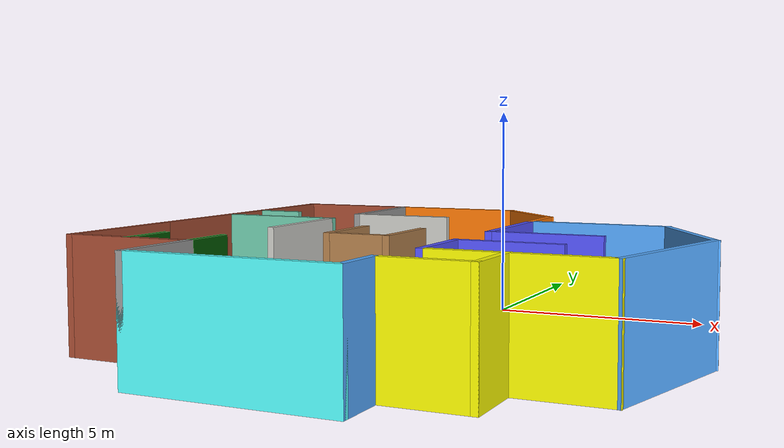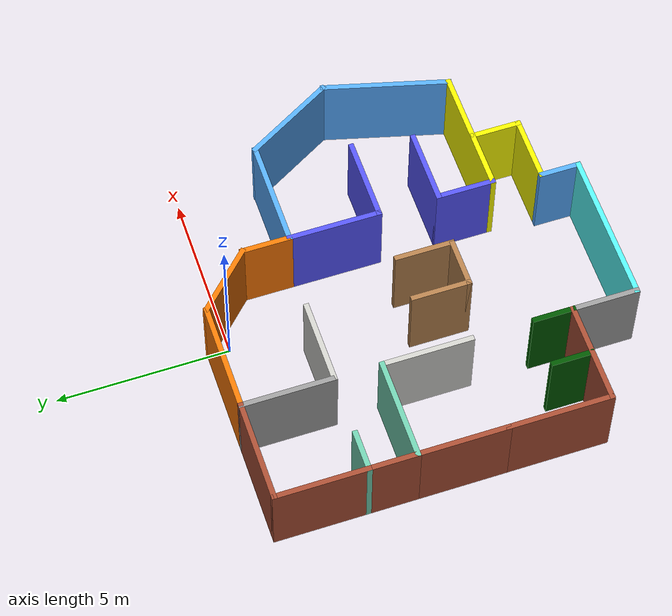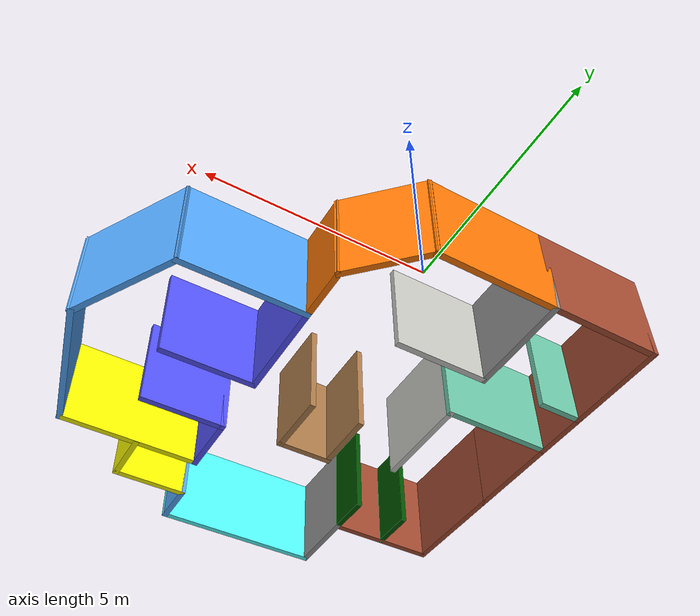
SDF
<?xml version='1.0'?>
<sdf version='1.6'>
  <model name='building4'>
    <pose frame=''>0.073423 -5.03449 0 0 -0 0</pose>
    <link name='Wall_12'>
      <collision name='Wall_12_Collision'>
        <geometry>
          <box>
            <size>2.75 0.15 2.5</size>
          </box>
        </geometry>
        <pose frame=''>0 0 1.25 0 -0 0</pose>
      </collision>
      <visual name='Wall_12_Visual'>
        <pose frame=''>0 0 1.25 0 -0 0</pose>
        <geometry>
          <box>
            <size>2.75 0.15 2.5</size>
          </box>
        </geometry>
        <material>
          <script>
            <uri>file://media/materials/scripts/gazebo.material</uri>
            <name>Gazebo/Bricks</name>
          </script>
          <ambient>1 1 1 1</ambient>
        </material>
      </visual>
      <pose frame=''>-5.99369 4.30947 0 0 -0 1.5708</pose>
    </link>
    <link name='Wall_13'>
      <collision name='Wall_13_Collision'>
        <geometry>
          <box>
            <size>3 0.15 2.5</size>
          </box>
        </geometry>
        <pose frame=''>0 0 1.25 0 -0 0</pose>
      </collision>
      <visual name='Wall_13_Visual'>
        <pose frame=''>0 0 1.25 0 -0 0</pose>
        <geometry>
          <box>
            <size>3 0.15 2.5</size>
          </box>
        </geometry>
        <material>
          <script>
            <uri>file://media/materials/scripts/gazebo.material</uri>
            <name>Gazebo/Bricks</name>
          </script>
          <ambient>1 1 1 1</ambient>
        </material>
      </visual>
      <pose frame=''>-4.56869 5.60947 0 0 -0 0</pose>
    </link>
    <link name='Wall_14'>
      <collision name='Wall_14_Collision'>
        <geometry>
          <box>
            <size>2.75 0.15 2.5</size>
          </box>
        </geometry>
        <pose frame=''>0 0 1.25 0 -0 0</pose>
      </collision>
      <visual name='Wall_14_Visual'>
        <pose frame=''>0 0 1.25 0 -0 0</pose>
        <geometry>
          <box>
            <size>2.75 0.15 2.5</size>
          </box>
        </geometry>
        <material>
          <script>
            <uri>file://media/materials/scripts/gazebo.material</uri>
            <name>Gazebo/Grey</name>
          </script>
          <ambient>1 1 1 1</ambient>
        </material>
      </visual>
      <pose frame=''>-3.14369 4.30947 0 0 0 -1.5708</pose>
    </link>
    <link name='Wall_16'>
      <collision name='Wall_16_Collision'>
        <geometry>
          <box>
            <size>2.5 0.15 2.5</size>
          </box>
        </geometry>
        <pose frame=''>0 0 1.25 0 -0 0</pose>
      </collision>
      <visual name='Wall_16_Visual'>
        <pose frame=''>0 0 1.25 0 -0 0</pose>
        <geometry>
          <box>
            <size>2.5 0.15 2.5</size>
          </box>
        </geometry>
        <material>
          <script>
            <uri>file://media/materials/scripts/gazebo.material</uri>
            <name>Gazebo/CeilingTiled</name>
          </script>
          <ambient>1 0 1 1</ambient>
        </material>
      </visual>
      <pose frame=''>-1.96869 3.00947 0 0 -0 0</pose>
    </link>
    <link name='Wall_18'>
      <collision name='Wall_18_Collision'>
        <geometry>
          <box>
            <size>3.25 0.15 2.5</size>
          </box>
        </geometry>
        <pose frame=''>0 0 1.25 0 -0 0</pose>
      </collision>
      <visual name='Wall_18_Visual'>
        <pose frame=''>0 0 1.25 0 -0 0</pose>
        <geometry>
          <box>
            <size>3.25 0.15 2.5</size>
          </box>
        </geometry>
        <material>
          <script>
            <uri>file://media/materials/scripts/gazebo.material</uri>
            <name>Gazebo/Grey</name>
          </script>
          <ambient>0.996078 0.47451 0.0196078 1</ambient>
        </material>
      </visual>
      <pose frame=''>-1.59369 5.60947 0 0 -0 0</pose>
    </link>
    <link name='Wall_19'>
      <collision name='Wall_19_Collision'>
        <geometry>
          <box>
            <size>2.25 0.15 2.5</size>
          </box>
        </geometry>
        <pose frame=''>0 0 1.25 0 -0 0</pose>
      </collision>
      <visual name='Wall_19_Visual'>
        <pose frame=''>0 0 1.25 0 -0 0</pose>
        <geometry>
          <box>
            <size>2.25 0.15 2.5</size>
          </box>
        </geometry>
        <material>
          <script>
            <uri>file://media/materials/scripts/gazebo.material</uri>
            <name>Gazebo/Grey</name>
          </script>
          <ambient>0.996078 0.47451 0.0196078 1</ambient>
        </material>
      </visual>
      <pose frame=''>0.698774 4.867 0 0 0 -0.785398</pose>
    </link>
    <link name='Wall_2'>
      <collision name='Wall_2_Collision'>
        <geometry>
          <box>
            <size>1.5 0.15 2.5</size>
          </box>
        </geometry>
        <pose frame=''>0 0 1.25 0 -0 0</pose>
      </collision>
      <visual name='Wall_2_Visual'>
        <pose frame=''>0 0 1.25 0 -0 0</pose>
        <geometry>
          <box>
            <size>1.5 0.15 2.5</size>
          </box>
        </geometry>
        <material>
          <script>
            <uri>file://media/materials/scripts/gazebo.material</uri>
            <name>Gazebo/Bricks</name>
          </script>
          <ambient>1 1 1 1</ambient>
        </material>
      </visual>
      <pose frame=''>-5.99369 2.33447 0 0 0 -1.5708</pose>
    </link>
    <link name='Wall_20'>
      <collision name='Wall_20_Collision'>
        <geometry>
          <box>
            <size>1.5 0.15 2.5</size>
          </box>
        </geometry>
        <pose frame=''>0 0 1.25 0 -0 0</pose>
      </collision>
      <visual name='Wall_20_Visual'>
        <pose frame=''>0 0 1.25 0 -0 0</pose>
        <geometry>
          <box>
            <size>1.5 0.15 2.5</size>
          </box>
        </geometry>
        <material>
          <script>
            <uri>file://media/materials/scripts/gazebo.material</uri>
            <name>Gazebo/Grey</name>
          </script>
          <ambient>0.996078 0.47451 0.0196078 1</ambient>
        </material>
      </visual>
      <pose frame=''>1.44124 3.44954 0 0 0 -1.5708</pose>
    </link>
    <link name='Wall_21'>
      <collision name='Wall_21_Collision'>
        <geometry>
          <box>
            <size>3.25 0.15 2.5</size>
          </box>
        </geometry>
        <pose frame=''>0 0 1.25 0 -0 0</pose>
      </collision>
      <visual name='Wall_21_Visual'>
        <pose frame=''>0 0 1.25 0 -0 0</pose>
        <geometry>
          <box>
            <size>3.25 0.15 2.5</size>
          </box>
        </geometry>
        <material>
          <script>
            <uri>file://media/materials/scripts/gazebo.material</uri>
            <name>Gazebo/Grey</name>
          </script>
          <ambient>0.333333 0.666667 1 1</ambient>
        </material>
      </visual>
      <pose frame=''>2.99124 2.77454 0 0 -0 0</pose>
    </link>
    <link name='Wall_22'>
      <collision name='Wall_22_Collision'>
        <geometry>
          <box>
            <size>3 0.15 2.5</size>
          </box>
        </geometry>
        <pose frame=''>0 0 1.25 0 -0 0</pose>
      </collision>
      <visual name='Wall_22_Visual'>
        <pose frame=''>0 0 1.25 0 -0 0</pose>
        <geometry>
          <box>
            <size>3 0.15 2.5</size>
          </box>
        </geometry>
        <material>
          <script>
            <uri>file://media/materials/scripts/gazebo.material</uri>
            <name>Gazebo/Grey</name>
          </script>
          <ambient>0.333333 0.666667 1 1</ambient>
        </material>
      </visual>
      <pose frame=''>5.25374 1.54046 0 0 0 -1.0472</pose>
    </link>
    <link name='Wall_23'>
      <collision name='Wall_23_Collision'>
        <geometry>
          <box>
            <size>3.75 0.15 2.5</size>
          </box>
        </geometry>
        <pose frame=''>0 0 1.25 0 -0 0</pose>
      </collision>
      <visual name='Wall_23_Visual'>
        <pose frame=''>0 0 1.25 0 -0 0</pose>
        <geometry>
          <box>
            <size>3.75 0.15 2.5</size>
          </box>
        </geometry>
        <material>
          <script>
            <uri>file://media/materials/scripts/gazebo.material</uri>
            <name>Gazebo/Grey</name>
          </script>
          <ambient>0.333333 0.666667 1 1</ambient>
        </material>
      </visual>
      <pose frame=''>5.50036 -1.4323 0 0 0 -1.8326</pose>
    </link>
    <link name='Wall_25'>
      <collision name='Wall_25_Collision'>
        <geometry>
          <box>
            <size>3.07036 0.15 2.5</size>
          </box>
        </geometry>
        <pose frame=''>0 0 1.25 0 -0 0</pose>
      </collision>
      <visual name='Wall_25_Visual'>
        <pose frame=''>0 0 1.25 0 -0 0</pose>
        <geometry>
          <box>
            <size>3.07036 0.15 2.5</size>
          </box>
        </geometry>
        <material>
          <script>
            <uri>file://media/materials/scripts/gazebo.material</uri>
            <name>Gazebo/Bricks</name>
          </script>
          <ambient>1 1 1 1</ambient>
        </material>
      </visual>
      <pose frame=''>-5.99369 -2.33035 0 0 0 -1.5708</pose>
    </link>
    <link name='Wall_26'>
      <collision name='Wall_26_Collision'>
        <geometry>
          <box>
            <size>3 0.15 2.5</size>
          </box>
        </geometry>
        <pose frame=''>0 0 1.25 0 -0 0</pose>
      </collision>
      <visual name='Wall_26_Visual'>
        <pose frame=''>0 0 1.25 0 -0 0</pose>
        <geometry>
          <box>
            <size>3 0.15 2.5</size>
          </box>
        </geometry>
        <material>
          <script>
            <uri>file://media/materials/scripts/gazebo.material</uri>
            <name>Gazebo/Bricks</name>
          </script>
          <ambient>1 1 1 1</ambient>
        </material>
      </visual>
      <pose frame=''>-4.56869 -3.79053 0 0 -0 0</pose>
    </link>
    <link name='Wall_27'>
      <collision name='Wall_27_Collision'>
        <geometry>
          <box>
            <size>1.25 0.15 2.5</size>
          </box>
        </geometry>
        <pose frame=''>0 0 1.25 0 -0 0</pose>
      </collision>
      <visual name='Wall_27_Visual'>
        <pose frame=''>0 0 1.25 0 -0 0</pose>
        <geometry>
          <box>
            <size>1.25 0.15 2.5</size>
          </box>
        </geometry>
        <material>
          <script>
            <uri>file://media/materials/scripts/gazebo.material</uri>
            <name>Gazebo/Grey</name>
          </script>
          <ambient>0 0.333333 0 1</ambient>
        </material>
      </visual>
      <pose frame=''>-3.14369 -3.24053 0 0 -0 1.5708</pose>
    </link>
    <link name='Wall_29'>
      <collision name='Wall_29_Collision'>
        <geometry>
          <box>
            <size>2.75 0.15 2.5</size>
          </box>
        </geometry>
        <pose frame=''>0 0 1.25 0 -0 0</pose>
      </collision>
      <visual name='Wall_29_Visual'>
        <pose frame=''>0 0 1.25 0 -0 0</pose>
        <geometry>
          <box>
            <size>2.75 0.15 2.5</size>
          </box>
        </geometry>
        <material>
          <script>
            <uri>file://media/materials/scripts/gazebo.material</uri>
            <name>Gazebo/Grey</name>
          </script>
          <ambient>0.333333 0.333333 1 1</ambient>
        </material>
      </visual>
      <pose frame=''>1.44124 1.47454 0 0 0 -1.5708</pose>
    </link>
    <link name='Wall_30'>
      <collision name='Wall_30_Collision'>
        <geometry>
          <box>
            <size>2.5 0.15 2.5</size>
          </box>
        </geometry>
        <pose frame=''>0 0 1.25 0 -0 0</pose>
      </collision>
      <visual name='Wall_30_Visual'>
        <pose frame=''>0 0 1.25 0 -0 0</pose>
        <geometry>
          <box>
            <size>2.5 0.15 2.5</size>
          </box>
        </geometry>
        <material>
          <script>
            <uri>file://media/materials/scripts/gazebo.material</uri>
            <name>Gazebo/Grey</name>
          </script>
          <ambient>0.333333 0.333333 1 1</ambient>
        </material>
      </visual>
      <pose frame=''>2.61624 0.174543 0 0 -0 0</pose>
    </link>
    <link name='Wall_32'>
      <collision name='Wall_32_Collision'>
        <geometry>
          <box>
            <size>3.75 0.15 2.5</size>
          </box>
        </geometry>
        <pose frame=''>0 0 1.25 0 -0 0</pose>
      </collision>
      <visual name='Wall_32_Visual'>
        <pose frame=''>0 0 1.25 0 -0 0</pose>
        <geometry>
          <box>
            <size>3.75 0.15 2.5</size>
          </box>
        </geometry>
        <material>
          <script>
            <uri>file://media/materials/scripts/gazebo.material</uri>
            <name>Gazebo/Grey</name>
          </script>
          <ambient>1 1 0 1</ambient>
        </material>
      </visual>
      <pose frame=''>3.23449 -3.17096 0 0 -0 3.14159</pose>
    </link>
    <link name='Wall_33'>
      <collision name='Wall_33_Collision'>
        <geometry>
          <box>
            <size>1.75 0.15 2.5</size>
          </box>
        </geometry>
        <pose frame=''>0 0 1.25 0 -0 0</pose>
      </collision>
      <visual name='Wall_33_Visual'>
        <pose frame=''>0 0 1.25 0 -0 0</pose>
        <geometry>
          <box>
            <size>1.75 0.15 2.5</size>
          </box>
        </geometry>
        <material>
          <script>
            <uri>file://media/materials/scripts/gazebo.material</uri>
            <name>Gazebo/Grey</name>
          </script>
          <ambient>0.333333 0.333333 1 1</ambient>
        </material>
      </visual>
      <pose frame=''>1.43449 -2.37096 0 0 -0 1.5708</pose>
    </link>
    <link name='Wall_34'>
      <collision name='Wall_34_Collision'>
        <geometry>
          <box>
            <size>2.25 0.15 2.5</size>
          </box>
        </geometry>
        <pose frame=''>0 0 1.25 0 -0 0</pose>
      </collision>
      <visual name='Wall_34_Visual'>
        <pose frame=''>0 0 1.25 0 -0 0</pose>
        <geometry>
          <box>
            <size>2.25 0.15 2.5</size>
          </box>
        </geometry>
        <material>
          <script>
            <uri>file://media/materials/scripts/gazebo.material</uri>
            <name>Gazebo/Grey</name>
          </script>
          <ambient>0.333333 0.333333 1 1</ambient>
        </material>
      </visual>
      <pose frame=''>2.48449 -1.57096 0 0 -0 0</pose>
    </link>
    <link name='Wall_36'>
      <collision name='Wall_36_Collision'>
        <geometry>
          <box>
            <size>2 0.15 2.5</size>
          </box>
        </geometry>
        <pose frame=''>0 0 1.25 0 -0 0</pose>
      </collision>
      <visual name='Wall_36_Visual'>
        <pose frame=''>0 0 1.25 0 -0 0</pose>
        <geometry>
          <box>
            <size>2 0.15 2.5</size>
          </box>
        </geometry>
        <material>
          <script>
            <uri>file://media/materials/scripts/gazebo.material</uri>
            <name>Gazebo/Grey</name>
          </script>
          <ambient>1 1 1 1</ambient>
        </material>
      </visual>
      <pose frame=''>-3.14369 -4.71553 0 0 0 -1.5708</pose>
    </link>
    <link name='Wall_37'>
      <collision name='Wall_37_Collision'>
        <geometry>
          <box>
            <size>4.5 0.15 2.5</size>
          </box>
        </geometry>
        <pose frame=''>0 0 1.25 0 -0 0</pose>
      </collision>
      <visual name='Wall_37_Visual'>
        <pose frame=''>0 0 1.25 0 -0 0</pose>
        <geometry>
          <box>
            <size>4.5 0.15 2.5</size>
          </box>
        </geometry>
        <material>
          <script>
            <uri>file://media/materials/scripts/gazebo.material</uri>
            <name>Gazebo/Grey</name>
          </script>
          <ambient>0.333333 1 1 1</ambient>
        </material>
      </visual>
      <pose frame=''>-0.968688 -5.64053 0 0 -0 0</pose>
    </link>
    <link name='Wall_38'>
      <collision name='Wall_38_Collision'>
        <geometry>
          <box>
            <size>1.25 0.15 2.5</size>
          </box>
        </geometry>
        <pose frame=''>0 0 1.25 0 -0 0</pose>
      </collision>
      <visual name='Wall_38_Visual'>
        <pose frame=''>0 0 1.25 0 -0 0</pose>
        <geometry>
          <box>
            <size>1.25 0.15 2.5</size>
          </box>
        </geometry>
        <material>
          <script>
            <uri>file://media/materials/scripts/gazebo.material</uri>
            <name>Gazebo/Grey</name>
          </script>
          <ambient>0.333333 0.666667 1 1</ambient>
        </material>
      </visual>
      <pose frame=''>1.20631 -5.09053 0 0 -0 1.5708</pose>
    </link>
    <link name='Wall_39'>
      <collision name='Wall_39_Collision'>
        <geometry>
          <box>
            <size>2 0.15 2.5</size>
          </box>
        </geometry>
        <pose frame=''>0 0 1.25 0 -0 0</pose>
      </collision>
      <visual name='Wall_39_Visual'>
        <pose frame=''>0 0 1.25 0 -0 0</pose>
        <geometry>
          <box>
            <size>2 0.15 2.5</size>
          </box>
        </geometry>
        <material>
          <script>
            <uri>file://media/materials/scripts/gazebo.material</uri>
            <name>Gazebo/Grey</name>
          </script>
          <ambient>1 1 0 1</ambient>
        </material>
      </visual>
      <pose frame=''>2.13131 -4.54053 0 0 -0 0</pose>
    </link>
    <link name='Wall_40'>
      <collision name='Wall_40_Collision'>
        <geometry>
          <box>
            <size>1.5 0.15 2.5</size>
          </box>
        </geometry>
        <pose frame=''>0 0 1.25 0 -0 0</pose>
      </collision>
      <visual name='Wall_40_Visual'>
        <pose frame=''>0 0 1.25 0 -0 0</pose>
        <geometry>
          <box>
            <size>1.5 0.15 2.5</size>
          </box>
        </geometry>
        <material>
          <script>
            <uri>file://media/materials/scripts/gazebo.material</uri>
            <name>Gazebo/Grey</name>
          </script>
          <ambient>1 1 0 1</ambient>
        </material>
      </visual>
      <pose frame=''>3.05631 -3.86553 0 0 -0 1.5708</pose>
    </link>
    <link name='Wall_42'>
      <collision name='Wall_42_Collision'>
        <geometry>
          <box>
            <size>1.75 0.15 2.5</size>
          </box>
        </geometry>
        <pose frame=''>0 0 1.25 0 -0 0</pose>
      </collision>
      <visual name='Wall_42_Visual'>
        <pose frame=''>0 0 1.25 0 -0 0</pose>
        <geometry>
          <box>
            <size>1.75 0.15 2.5</size>
          </box>
        </geometry>
        <material>
          <script>
            <uri>file://media/materials/scripts/gazebo.material</uri>
            <name>Gazebo/Wood</name>
          </script>
          <ambient>1 1 1 1</ambient>
        </material>
      </visual>
      <pose frame=''>-1.45887 -0.614271 0 0 0 -1.5708</pose>
    </link>
    <link name='Wall_43'>
      <collision name='Wall_43_Collision'>
        <geometry>
          <box>
            <size>1.5 0.15 2.5</size>
          </box>
        </geometry>
        <pose frame=''>0 0 1.25 0 -0 0</pose>
      </collision>
      <visual name='Wall_43_Visual'>
        <pose frame=''>0 0 1.25 0 -0 0</pose>
        <geometry>
          <box>
            <size>1.5 0.15 2.5</size>
          </box>
        </geometry>
        <material>
          <script>
            <uri>file://media/materials/scripts/gazebo.material</uri>
            <name>Gazebo/Wood</name>
          </script>
          <ambient>1 1 1 1</ambient>
        </material>
      </visual>
      <pose frame=''>-0.783873 -1.41427 0 0 -0 0</pose>
    </link>
    <link name='Wall_44'>
      <collision name='Wall_44_Collision'>
        <geometry>
          <box>
            <size>1.75 0.15 2.5</size>
          </box>
        </geometry>
        <pose frame=''>0 0 1.25 0 -0 0</pose>
      </collision>
      <visual name='Wall_44_Visual'>
        <pose frame=''>0 0 1.25 0 -0 0</pose>
        <geometry>
          <box>
            <size>1.75 0.15 2.5</size>
          </box>
        </geometry>
        <material>
          <script>
            <uri>file://media/materials/scripts/gazebo.material</uri>
            <name>Gazebo/Wood</name>
          </script>
          <ambient>1 1 1 1</ambient>
        </material>
      </visual>
      <pose frame=''>-0.108873 -0.614271 0 0 -0 1.5708</pose>
    </link>
    <link name='Wall_46'>
      <collision name='Wall_46_Collision'>
        <geometry>
          <box>
            <size>1.25 0.15 2.5</size>
          </box>
        </geometry>
        <pose frame=''>0 0 1.25 0 -0 0</pose>
      </collision>
      <visual name='Wall_46_Visual'>
        <pose frame=''>0 0 1.25 0 -0 0</pose>
        <geometry>
          <box>
            <size>1.25 0.15 2.5</size>
          </box>
        </geometry>
        <material>
          <script>
            <uri>file://media/materials/scripts/gazebo.material</uri>
            <name>Gazebo/Grey</name>
          </script>
          <ambient>0.435294 0.796078 0.67451 1</ambient>
        </material>
      </visual>
      <pose frame=''>-5.44369 3.00947 0 0 -0 0</pose>
    </link>
    <link name='Wall_48'>
      <collision name='Wall_48_Collision'>
        <geometry>
          <box>
            <size>3 0.15 2.5</size>
          </box>
        </geometry>
        <pose frame=''>0 0 1.25 0 -0 0</pose>
      </collision>
      <visual name='Wall_48_Visual'>
        <pose frame=''>0 0 1.25 0 -0 0</pose>
        <geometry>
          <box>
            <size>3 0.15 2.5</size>
          </box>
        </geometry>
        <material>
          <script>
            <uri>file://media/materials/scripts/gazebo.material</uri>
            <name>Gazebo/Grey</name>
          </script>
          <ambient>0.435294 0.796078 0.67451 1</ambient>
        </material>
      </visual>
      <pose frame=''>-4.56869 1.65947 0 0 -0 0</pose>
    </link>
    <link name='Wall_51'>
      <collision name='Wall_51_Collision'>
        <geometry>
          <box>
            <size>1.25 0.15 2.5</size>
          </box>
        </geometry>
        <pose frame=''>0 0 1.25 0 -0 0</pose>
      </collision>
      <visual name='Wall_51_Visual'>
        <pose frame=''>0 0 1.25 0 -0 0</pose>
        <geometry>
          <box>
            <size>1.25 0.15 2.5</size>
          </box>
        </geometry>
        <material>
          <script>
            <uri>file://media/materials/scripts/gazebo.material</uri>
            <name>Gazebo/Grey</name>
          </script>
          <ambient>0 0.333333 0 1</ambient>
        </material>
      </visual>
      <pose frame=''>-4.56492 -3.22968 0 0 -0 1.5708</pose>
    </link>
    <link name='Wall_6'>
      <collision name='Wall_6_Collision'>
        <geometry>
          <box>
            <size>2.67964 0.15 2.5</size>
          </box>
        </geometry>
        <pose frame=''>0 0 1.25 0 -0 0</pose>
      </collision>
      <visual name='Wall_6_Visual'>
        <pose frame=''>0 0 1.25 0 -0 0</pose>
        <geometry>
          <box>
            <size>2.67964 0.15 2.5</size>
          </box>
        </geometry>
        <material>
          <script>
            <uri>file://media/materials/scripts/gazebo.material</uri>
            <name>Gazebo/Bricks</name>
          </script>
          <ambient>1 1 1 1</ambient>
        </material>
      </visual>
      <pose frame=''>-5.99369 0.394646 0 0 0 -1.5708</pose>
    </link>
    <link name='Wall_8'>
      <collision name='Wall_8_Collision'>
        <geometry>
          <box>
            <size>2.67964 0.15 2.5</size>
          </box>
        </geometry>
        <pose frame=''>0 0 1.25 0 -0 0</pose>
      </collision>
      <visual name='Wall_8_Visual'>
        <pose frame=''>0 0 1.25 0 -0 0</pose>
        <geometry>
          <box>
            <size>2.67964 0.15 2.5</size>
          </box>
        </geometry>
        <material>
          <script>
            <uri>file://media/materials/scripts/gazebo.material</uri>
            <name>Gazebo/CeilingTiled</name>
          </script>
          <ambient>1 0 1 1</ambient>
        </material>
      </visual>
      <pose frame=''>-3.14369 0.394646 0 0 -0 1.5708</pose>
    </link>
    <static>1</static>
  </model>
</sdf>
